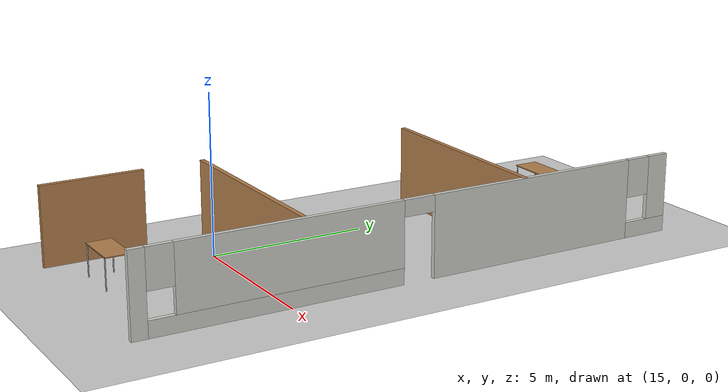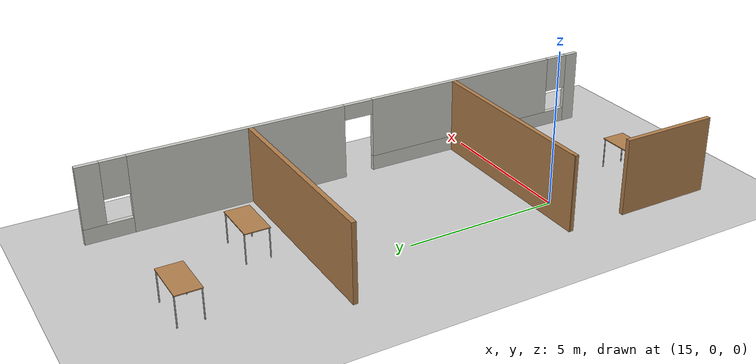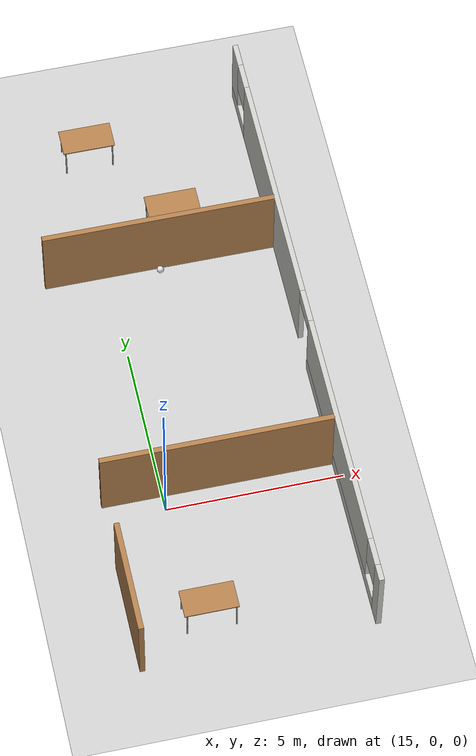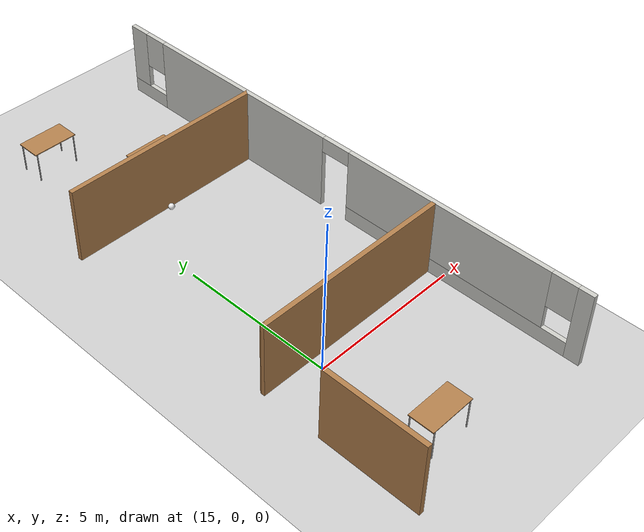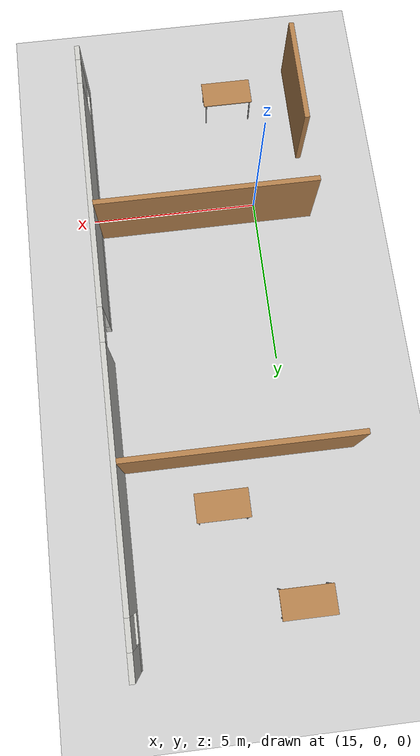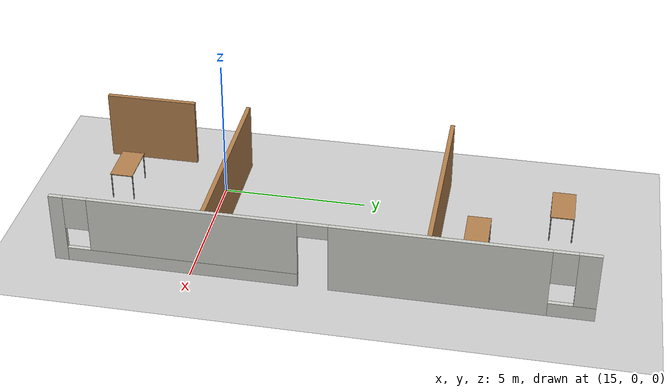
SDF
<sdf version="1.6">
 <world name="default">
  <model name="ground_plane">
   <static>1</static>
   <link name="link">
    <collision name="collision">
     <geometry><plane><normal>0 0 1</normal><size>100 100</size></plane></geometry>
     <surface>
      <contact><collide_bitmask>65535</collide_bitmask></contact>
      <friction><ode><mu>100</mu><mu2>50</mu2></ode></friction>
     </surface>
    </collision>
    <visual name="visual">
     <cast_shadows>0</cast_shadows>
     <geometry><plane><normal>0 0 1</normal><size>100 100</size></plane></geometry>
     <material>
      <script><uri>file://media/materials/scripts/gazebo.material</uri><name>Gazebo/Grey</name></script>
     </material>
    </visual>
   </link>
  </model>
  <model name="table_4">
   <static>1</static>
   <link name="link">
    <collision name="surface">
     <pose>0 0 1 0 -0 0</pose>
     <geometry><box><size>1.5 0.8 0.03</size></box></geometry>
     <surface><friction><ode><mu>0.6</mu><mu2>0.6</mu2></ode></friction></surface>
    </collision>
    <visual name="visual1">
     <pose>0 0 1 0 -0 0</pose>
     <geometry><box><size>1.5 0.8 0.03</size></box></geometry>
     <material>
      <script><uri>file://media/materials/scripts/gazebo.material</uri><name>Gazebo/Wood</name></script>
     </material>
    </visual>
    <collision name="front_left_leg">
     <pose>0.68 0.38 0.5 0 -0 0</pose>
     <geometry><cylinder><radius>0.02</radius><length>1</length></cylinder></geometry>
    </collision>
    <visual name="front_left_leg">
     <pose>0.68 0.38 0.5 0 -0 0</pose>
     <geometry><cylinder><radius>0.02</radius><length>1</length></cylinder></geometry>
     <material>
      <script><uri>file://media/materials/scripts/gazebo.material</uri><name>Gazebo/Grey</name></script>
     </material>
    </visual>
    <collision name="front_right_leg">
     <pose>0.68 -0.38 0.5 0 -0 0</pose>
     <geometry><cylinder><radius>0.02</radius><length>1</length></cylinder></geometry>
    </collision>
    <visual name="front_right_leg">
     <pose>0.68 -0.38 0.5 0 -0 0</pose>
     <geometry><cylinder><radius>0.02</radius><length>1</length></cylinder></geometry>
     <material>
      <script><uri>file://media/materials/scripts/gazebo.material</uri><name>Gazebo/Grey</name></script>
     </material>
    </visual>
    <collision name="back_right_leg">
     <pose>-0.68 -0.38 0.5 0 -0 0</pose>
     <geometry><cylinder><radius>0.02</radius><length>1</length></cylinder></geometry>
    </collision>
    <visual name="back_right_leg">
     <pose>-0.68 -0.38 0.5 0 -0 0</pose>
     <geometry><cylinder><radius>0.02</radius><length>1</length></cylinder></geometry>
     <material>
      <script><uri>file://media/materials/scripts/gazebo.material</uri><name>Gazebo/Grey</name></script>
     </material>
    </visual>
    <collision name="back_left_leg">
     <pose>-0.68 0.38 0.5 0 -0 0</pose>
     <geometry><cylinder><radius>0.02</radius><length>1</length></cylinder></geometry>
    </collision>
    <visual name="back_left_leg">
     <pose>-0.68 0.38 0.5 0 -0 0</pose>
     <geometry><cylinder><radius>0.02</radius><length>1</length></cylinder></geometry>
     <material>
      <script><uri>file://media/materials/scripts/gazebo.material</uri><name>Gazebo/Grey</name></script>
     </material>
    </visual>
   </link>
   <pose>17.1453 9.11903 0 0 -0 0</pose>
  </model>
  <model name="table_5">
   <static>1</static>
   <link name="link">
    <collision name="surface">
     <pose>0 0 1 0 -0 0</pose>
     <geometry><box><size>1.5 0.8 0.03</size></box></geometry>
     <surface><friction><ode><mu>0.6</mu><mu2>0.6</mu2></ode></friction></surface>
    </collision>
    <visual name="visual1">
     <pose>0 0 1 0 -0 0</pose>
     <geometry><box><size>1.5 0.8 0.03</size></box></geometry>
     <material>
      <script><uri>file://media/materials/scripts/gazebo.material</uri><name>Gazebo/Wood</name></script>
     </material>
    </visual>
    <collision name="front_left_leg">
     <pose>0.68 0.38 0.5 0 -0 0</pose>
     <geometry><cylinder><radius>0.02</radius><length>1</length></cylinder></geometry>
    </collision>
    <visual name="front_left_leg">
     <pose>0.68 0.38 0.5 0 -0 0</pose>
     <geometry><cylinder><radius>0.02</radius><length>1</length></cylinder></geometry>
     <material>
      <script><uri>file://media/materials/scripts/gazebo.material</uri><name>Gazebo/Grey</name></script>
     </material>
    </visual>
    <collision name="front_right_leg">
     <pose>0.68 -0.38 0.5 0 -0 0</pose>
     <geometry><cylinder><radius>0.02</radius><length>1</length></cylinder></geometry>
    </collision>
    <visual name="front_right_leg">
     <pose>0.68 -0.38 0.5 0 -0 0</pose>
     <geometry><cylinder><radius>0.02</radius><length>1</length></cylinder></geometry>
     <material>
      <script><uri>file://media/materials/scripts/gazebo.material</uri><name>Gazebo/Grey</name></script>
     </material>
    </visual>
    <collision name="back_right_leg">
     <pose>-0.68 -0.38 0.5 0 -0 0</pose>
     <geometry><cylinder><radius>0.02</radius><length>1</length></cylinder></geometry>
    </collision>
    <visual name="back_right_leg">
     <pose>-0.68 -0.38 0.5 0 -0 0</pose>
     <geometry><cylinder><radius>0.02</radius><length>1</length></cylinder></geometry>
     <material>
      <script><uri>file://media/materials/scripts/gazebo.material</uri><name>Gazebo/Grey</name></script>
     </material>
    </visual>
    <collision name="back_left_leg">
     <pose>-0.68 0.38 0.5 0 -0 0</pose>
     <geometry><cylinder><radius>0.02</radius><length>1</length></cylinder></geometry>
    </collision>
    <visual name="back_left_leg">
     <pose>-0.68 0.38 0.5 0 -0 0</pose>
     <geometry><cylinder><radius>0.02</radius><length>1</length></cylinder></geometry>
     <material>
      <script><uri>file://media/materials/scripts/gazebo.material</uri><name>Gazebo/Grey</name></script>
     </material>
    </visual>
   </link>
   <pose>15.2043 11.8509 0 0 -0 0</pose>
  </model>
  <model name="table_6">
   <static>1</static>
   <link name="link">
    <collision name="surface">
     <pose>0 0 1 0 -0 0</pose>
     <geometry><box><size>1.5 0.8 0.03</size></box></geometry>
     <surface><friction><ode><mu>0.6</mu><mu2>0.6</mu2></ode></friction></surface>
    </collision>
    <visual name="visual1">
     <pose>0 0 1 0 -0 0</pose>
     <geometry><box><size>1.5 0.8 0.03</size></box></geometry>
     <material>
      <script><uri>file://media/materials/scripts/gazebo.material</uri><name>Gazebo/Wood</name></script>
     </material>
    </visual>
    <collision name="front_left_leg">
     <pose>0.68 0.38 0.5 0 -0 0</pose>
     <geometry><cylinder><radius>0.02</radius><length>1</length></cylinder></geometry>
    </collision>
    <visual name="front_left_leg">
     <pose>0.68 0.38 0.5 0 -0 0</pose>
     <geometry><cylinder><radius>0.02</radius><length>1</length></cylinder></geometry>
     <material>
      <script><uri>file://media/materials/scripts/gazebo.material</uri><name>Gazebo/Grey</name></script>
     </material>
    </visual>
    <collision name="front_right_leg">
     <pose>0.68 -0.38 0.5 0 -0 0</pose>
     <geometry><cylinder><radius>0.02</radius><length>1</length></cylinder></geometry>
    </collision>
    <visual name="front_right_leg">
     <pose>0.68 -0.38 0.5 0 -0 0</pose>
     <geometry><cylinder><radius>0.02</radius><length>1</length></cylinder></geometry>
     <material>
      <script><uri>file://media/materials/scripts/gazebo.material</uri><name>Gazebo/Grey</name></script>
     </material>
    </visual>
    <collision name="back_right_leg">
     <pose>-0.68 -0.38 0.5 0 -0 0</pose>
     <geometry><cylinder><radius>0.02</radius><length>1</length></cylinder></geometry>
    </collision>
    <visual name="back_right_leg">
     <pose>-0.68 -0.38 0.5 0 -0 0</pose>
     <geometry><cylinder><radius>0.02</radius><length>1</length></cylinder></geometry>
     <material>
      <script><uri>file://media/materials/scripts/gazebo.material</uri><name>Gazebo/Grey</name></script>
     </material>
    </visual>
    <collision name="back_left_leg">
     <pose>-0.68 0.38 0.5 0 -0 0</pose>
     <geometry><cylinder><radius>0.02</radius><length>1</length></cylinder></geometry>
    </collision>
    <visual name="back_left_leg">
     <pose>-0.68 0.38 0.5 0 -0 0</pose>
     <geometry><cylinder><radius>0.02</radius><length>1</length></cylinder></geometry>
     <material>
      <script><uri>file://media/materials/scripts/gazebo.material</uri><name>Gazebo/Grey</name></script>
     </material>
    </visual>
   </link>
   <pose>15.4576 -3.44775 0 0 -0 0</pose>
  </model>
  <model name="mybuilding">
   <link name="Wall_41">
    <pose>19.8298 0.007562 0 0 -0 1.5708</pose>
    <visual name="Wall_41_Visual_9">
     <pose>-0.150712 0 2.25 0 -0 0</pose>
     <geometry><box><size>1 0.15 0.5</size></box></geometry>
     <material>
      <script><uri>file://media/materials/scripts/gazebo.material</uri><name>Gazebo/CeilingTiled</name></script>
      <ambient>1 0.972549 0.847059 1</ambient>
      <shader type="pixel"/>
      <diffuse>1 1 1 1</diffuse>
      <specular>0 0 0 1</specular>
      <emissive>0 0 0 1</emissive>
     </material>
     <meta><layer>0</layer></meta>
    </visual>
    <visual name="Wall_41_Visual_0">
     <pose>-8.63665 0 1.25 0 -0 0</pose>
     <geometry><box><size>0.476697 0.15 2.5</size></box></geometry>
     <material>
      <script><uri>file://media/materials/scripts/gazebo.material</uri><name>Gazebo/CeilingTiled</name></script>
      <ambient>1 0.972549 0.847059 1</ambient>
      <shader type="pixel"/>
      <diffuse>1 1 1 1</diffuse>
      <specular>0 0 0 1</specular>
      <emissive>0 0 0 1</emissive>
     </material>
     <meta><layer>0</layer></meta>
    </visual>
    <visual name="Wall_41_Visual_1">
     <pose>3.85638 0 1.25 0 -0 0</pose>
     <geometry><box><size>7.01419 0.15 2.5</size></box></geometry>
     <material>
      <script><uri>file://media/materials/scripts/gazebo.material</uri><name>Gazebo/CeilingTiled</name></script>
      <ambient>1 0.972549 0.847059 1</ambient>
      <shader type="pixel"/>
      <diffuse>1 1 1 1</diffuse>
      <specular>0 0 0 1</specular>
      <emissive>0 0 0 1</emissive>
     </material>
     <meta><layer>0</layer></meta>
    </visual>
    <visual name="Wall_41_Visual_2">
     <pose>-4.52451 0 0.25 0 -0 0</pose>
     <geometry><box><size>7.74759 0.15 0.5</size></box></geometry>
     <material>
      <script><uri>file://media/materials/scripts/gazebo.material</uri><name>Gazebo/CeilingTiled</name></script>
      <ambient>1 0.972549 0.847059 1</ambient>
      <shader type="pixel"/>
      <diffuse>1 1 1 1</diffuse>
      <specular>0 0 0 1</specular>
      <emissive>0 0 0 1</emissive>
     </material>
     <meta><layer>0</layer></meta>
    </visual>
    <visual name="Wall_41_Visual_3">
     <pose>8.11924 0 0.25 0 -0 0</pose>
     <geometry><box><size>1.51152 0.15 0.5</size></box></geometry>
     <material>
      <script><uri>file://media/materials/scripts/gazebo.material</uri><name>Gazebo/CeilingTiled</name></script>
      <ambient>1 0.972549 0.847059 1</ambient>
      <shader type="pixel"/>
      <diffuse>1 1 1 1</diffuse>
      <specular>0 0 0 1</specular>
      <emissive>0 0 0 1</emissive>
     </material>
     <meta><layer>0</layer></meta>
    </visual>
    <visual name="Wall_41_Visual_4">
     <pose>-4.12451 0 1.5 0 -0 0</pose>
     <geometry><box><size>6.94759 0.15 2</size></box></geometry>
     <material>
      <script><uri>file://media/materials/scripts/gazebo.material</uri><name>Gazebo/CeilingTiled</name></script>
      <ambient>1 0.972549 0.847059 1</ambient>
      <shader type="pixel"/>
      <diffuse>1 1 1 1</diffuse>
      <specular>0 0 0 1</specular>
      <emissive>0 0 0 1</emissive>
     </material>
     <meta><layer>0</layer></meta>
    </visual>
    <visual name="Wall_41_Visual_5">
     <pose>-4.12451 0 1.5 0 -0 0</pose>
     <geometry><box><size>6.94759 0.15 2</size></box></geometry>
     <material>
      <script><uri>file://media/materials/scripts/gazebo.material</uri><name>Gazebo/CeilingTiled</name></script>
      <ambient>1 0.972549 0.847059 1</ambient>
      <shader type="pixel"/>
      <diffuse>1 1 1 1</diffuse>
      <specular>0 0 0 1</specular>
      <emissive>0 0 0 1</emissive>
     </material>
     <meta><layer>0</layer></meta>
    </visual>
    <visual name="Wall_41_Visual_6">
     <pose>8.51924 0 1.5 0 -0 0</pose>
     <geometry><box><size>0.711521 0.15 2</size></box></geometry>
     <material>
      <script><uri>file://media/materials/scripts/gazebo.material</uri><name>Gazebo/CeilingTiled</name></script>
      <ambient>1 0.972549 0.847059 1</ambient>
      <shader type="pixel"/>
      <diffuse>1 1 1 1</diffuse>
      <specular>0 0 0 1</specular>
      <emissive>0 0 0 1</emissive>
     </material>
     <meta><layer>0</layer></meta>
    </visual>
    <visual name="Wall_41_Visual_7">
     <pose>-7.9983 0 1.9 0 -0 0</pose>
     <geometry><box><size>0.8 0.15 1.2</size></box></geometry>
     <material>
      <script><uri>file://media/materials/scripts/gazebo.material</uri><name>Gazebo/CeilingTiled</name></script>
      <ambient>1 0.972549 0.847059 1</ambient>
      <shader type="pixel"/>
      <diffuse>1 1 1 1</diffuse>
      <specular>0 0 0 1</specular>
      <emissive>0 0 0 1</emissive>
     </material>
     <meta><layer>0</layer></meta>
    </visual>
    <visual name="Wall_41_Visual_8">
     <pose>7.76348 0 1.9 0 -0 0</pose>
     <geometry><box><size>0.8 0.15 1.2</size></box></geometry>
     <material>
      <script><uri>file://media/materials/scripts/gazebo.material</uri><name>Gazebo/CeilingTiled</name></script>
      <ambient>1 0.972549 0.847059 1</ambient>
      <shader type="pixel"/>
      <diffuse>1 1 1 1</diffuse>
      <specular>0 0 0 1</specular>
      <emissive>0 0 0 1</emissive>
     </material>
     <meta><layer>0</layer></meta>
    </visual>
    <visual name="Wall_41_Visual_10">
     <pose>-0.150712 0 2.25 0 -0 0</pose>
     <geometry><box><size>1 0.15 0.5</size></box></geometry>
     <material>
      <script><uri>file://media/materials/scripts/gazebo.material</uri><name>Gazebo/CeilingTiled</name></script>
      <ambient>1 0.972549 0.847059 1</ambient>
      <shader type="pixel"/>
      <diffuse>1 1 1 1</diffuse>
      <specular>0 0 0 1</specular>
      <emissive>0 0 0 1</emissive>
     </material>
     <meta><layer>0</layer></meta>
    </visual>
    <collision name="Wall_41_Collision_0">
     <pose>-8.63665 0 1.25 0 -0 0</pose>
     <geometry><box><size>0.476697 0.15 2.5</size></box></geometry>
     <surface>
      <friction>
       <ode><mu>1</mu><mu2>1</mu2><fdir1>0 0 0</fdir1><slip1>0</slip1><slip2>0</slip2></ode>
       <torsional>
        <coefficient>1</coefficient>
        <patch_radius>0</patch_radius>
        <surface_radius>0</surface_radius>
        <use_patch_radius>1</use_patch_radius>
        <ode><slip>0</slip></ode>
       </torsional>
      </friction>
      <bounce><restitution_coefficient>0</restitution_coefficient><threshold>1e+06</threshold></bounce>
      <contact>
       <collide_without_contact>0</collide_without_contact>
       <collide_without_contact_bitmask>1</collide_without_contact_bitmask>
       <collide_bitmask>1</collide_bitmask>
       <ode>
        <soft_cfm>0</soft_cfm>
        <soft_erp>0.2</soft_erp>
        <kp>1e+13</kp>
        <kd>1</kd>
        <max_vel>0.01</max_vel>
        <min_depth>0</min_depth>
       </ode>
       <bullet>
        <split_impulse>1</split_impulse>
        <split_impulse_penetration_threshold>-0.01</split_impulse_penetration_threshold>
        <soft_cfm>0</soft_cfm>
        <soft_erp>0.2</soft_erp>
        <kp>1e+13</kp>
        <kd>1</kd>
       </bullet>
      </contact>
     </surface>
    </collision>
    <collision name="Wall_41_Collision_1">
     <pose>3.85638 0 1.25 0 -0 0</pose>
     <geometry><box><size>7.01419 0.15 2.5</size></box></geometry>
     <surface>
      <friction>
       <ode><mu>1</mu><mu2>1</mu2><fdir1>0 0 0</fdir1><slip1>0</slip1><slip2>0</slip2></ode>
       <torsional>
        <coefficient>1</coefficient>
        <patch_radius>0</patch_radius>
        <surface_radius>0</surface_radius>
        <use_patch_radius>1</use_patch_radius>
        <ode><slip>0</slip></ode>
       </torsional>
      </friction>
      <bounce><restitution_coefficient>0</restitution_coefficient><threshold>1e+06</threshold></bounce>
      <contact>
       <collide_without_contact>0</collide_without_contact>
       <collide_without_contact_bitmask>1</collide_without_contact_bitmask>
       <collide_bitmask>1</collide_bitmask>
       <ode>
        <soft_cfm>0</soft_cfm>
        <soft_erp>0.2</soft_erp>
        <kp>1e+13</kp>
        <kd>1</kd>
        <max_vel>0.01</max_vel>
        <min_depth>0</min_depth>
       </ode>
       <bullet>
        <split_impulse>1</split_impulse>
        <split_impulse_penetration_threshold>-0.01</split_impulse_penetration_threshold>
        <soft_cfm>0</soft_cfm>
        <soft_erp>0.2</soft_erp>
        <kp>1e+13</kp>
        <kd>1</kd>
       </bullet>
      </contact>
     </surface>
    </collision>
    <collision name="Wall_41_Collision_2">
     <pose>-4.52451 0 0.25 0 -0 0</pose>
     <geometry><box><size>7.74759 0.15 0.5</size></box></geometry>
     <surface>
      <friction>
       <ode><mu>1</mu><mu2>1</mu2><fdir1>0 0 0</fdir1><slip1>0</slip1><slip2>0</slip2></ode>
       <torsional>
        <coefficient>1</coefficient>
        <patch_radius>0</patch_radius>
        <surface_radius>0</surface_radius>
        <use_patch_radius>1</use_patch_radius>
        <ode><slip>0</slip></ode>
       </torsional>
      </friction>
      <bounce><restitution_coefficient>0</restitution_coefficient><threshold>1e+06</threshold></bounce>
      <contact>
       <collide_without_contact>0</collide_without_contact>
       <collide_without_contact_bitmask>1</collide_without_contact_bitmask>
       <collide_bitmask>1</collide_bitmask>
       <ode>
        <soft_cfm>0</soft_cfm>
        <soft_erp>0.2</soft_erp>
        <kp>1e+13</kp>
        <kd>1</kd>
        <max_vel>0.01</max_vel>
        <min_depth>0</min_depth>
       </ode>
       <bullet>
        <split_impulse>1</split_impulse>
        <split_impulse_penetration_threshold>-0.01</split_impulse_penetration_threshold>
        <soft_cfm>0</soft_cfm>
        <soft_erp>0.2</soft_erp>
        <kp>1e+13</kp>
        <kd>1</kd>
       </bullet>
      </contact>
     </surface>
    </collision>
    <collision name="Wall_41_Collision_3">
     <pose>8.11924 0 0.25 0 -0 0</pose>
     <geometry><box><size>1.51152 0.15 0.5</size></box></geometry>
     <surface>
      <friction>
       <ode><mu>1</mu><mu2>1</mu2><fdir1>0 0 0</fdir1><slip1>0</slip1><slip2>0</slip2></ode>
       <torsional>
        <coefficient>1</coefficient>
        <patch_radius>0</patch_radius>
        <surface_radius>0</surface_radius>
        <use_patch_radius>1</use_patch_radius>
        <ode><slip>0</slip></ode>
       </torsional>
      </friction>
      <bounce><restitution_coefficient>0</restitution_coefficient><threshold>1e+06</threshold></bounce>
      <contact>
       <collide_without_contact>0</collide_without_contact>
       <collide_without_contact_bitmask>1</collide_without_contact_bitmask>
       <collide_bitmask>1</collide_bitmask>
       <ode>
        <soft_cfm>0</soft_cfm>
        <soft_erp>0.2</soft_erp>
        <kp>1e+13</kp>
        <kd>1</kd>
        <max_vel>0.01</max_vel>
        <min_depth>0</min_depth>
       </ode>
       <bullet>
        <split_impulse>1</split_impulse>
        <split_impulse_penetration_threshold>-0.01</split_impulse_penetration_threshold>
        <soft_cfm>0</soft_cfm>
        <soft_erp>0.2</soft_erp>
        <kp>1e+13</kp>
        <kd>1</kd>
       </bullet>
      </contact>
     </surface>
    </collision>
    <collision name="Wall_41_Collision_4">
     <pose>-4.12451 0 1.5 0 -0 0</pose>
     <geometry><box><size>6.94759 0.15 2</size></box></geometry>
     <surface>
      <friction>
       <ode><mu>1</mu><mu2>1</mu2><fdir1>0 0 0</fdir1><slip1>0</slip1><slip2>0</slip2></ode>
       <torsional>
        <coefficient>1</coefficient>
        <patch_radius>0</patch_radius>
        <surface_radius>0</surface_radius>
        <use_patch_radius>1</use_patch_radius>
        <ode><slip>0</slip></ode>
       </torsional>
      </friction>
      <bounce><restitution_coefficient>0</restitution_coefficient><threshold>1e+06</threshold></bounce>
      <contact>
       <collide_without_contact>0</collide_without_contact>
       <collide_without_contact_bitmask>1</collide_without_contact_bitmask>
       <collide_bitmask>1</collide_bitmask>
       <ode>
        <soft_cfm>0</soft_cfm>
        <soft_erp>0.2</soft_erp>
        <kp>1e+13</kp>
        <kd>1</kd>
        <max_vel>0.01</max_vel>
        <min_depth>0</min_depth>
       </ode>
       <bullet>
        <split_impulse>1</split_impulse>
        <split_impulse_penetration_threshold>-0.01</split_impulse_penetration_threshold>
        <soft_cfm>0</soft_cfm>
        <soft_erp>0.2</soft_erp>
        <kp>1e+13</kp>
        <kd>1</kd>
       </bullet>
      </contact>
     </surface>
    </collision>
    <collision name="Wall_41_Collision_5">
     <pose>-4.12451 0 1.5 0 -0 0</pose>
     <geometry><box><size>6.94759 0.15 2</size></box></geometry>
     <surface>
      <friction>
       <ode><mu>1</mu><mu2>1</mu2><fdir1>0 0 0</fdir1><slip1>0</slip1><slip2>0</slip2></ode>
       <torsional>
        <coefficient>1</coefficient>
        <patch_radius>0</patch_radius>
        <surface_radius>0</surface_radius>
        <use_patch_radius>1</use_patch_radius>
        <ode><slip>0</slip></ode>
       </torsional>
      </friction>
      <bounce><restitution_coefficient>0</restitution_coefficient><threshold>1e+06</threshold></bounce>
      <contact>
       <collide_without_contact>0</collide_without_contact>
       <collide_without_contact_bitmask>1</collide_without_contact_bitmask>
       <collide_bitmask>1</collide_bitmask>
       <ode>
        <soft_cfm>0</soft_cfm>
        <soft_erp>0.2</soft_erp>
        <kp>1e+13</kp>
        <kd>1</kd>
        <max_vel>0.01</max_vel>
        <min_depth>0</min_depth>
       </ode>
       <bullet>
        <split_impulse>1</split_impulse>
        <split_impulse_penetration_threshold>-0.01</split_impulse_penetration_threshold>
        <soft_cfm>0</soft_cfm>
        <soft_erp>0.2</soft_erp>
        <kp>1e+13</kp>
        <kd>1</kd>
       </bullet>
      </contact>
     </surface>
    </collision>
    <collision name="Wall_41_Collision_6">
     <pose>8.51924 0 1.5 0 -0 0</pose>
     <geometry><box><size>0.711521 0.15 2</size></box></geometry>
     <surface>
      <friction>
       <ode><mu>1</mu><mu2>1</mu2><fdir1>0 0 0</fdir1><slip1>0</slip1><slip2>0</slip2></ode>
       <torsional>
        <coefficient>1</coefficient>
        <patch_radius>0</patch_radius>
        <surface_radius>0</surface_radius>
        <use_patch_radius>1</use_patch_radius>
        <ode><slip>0</slip></ode>
       </torsional>
      </friction>
      <bounce><restitution_coefficient>0</restitution_coefficient><threshold>1e+06</threshold></bounce>
      <contact>
       <collide_without_contact>0</collide_without_contact>
       <collide_without_contact_bitmask>1</collide_without_contact_bitmask>
       <collide_bitmask>1</collide_bitmask>
       <ode>
        <soft_cfm>0</soft_cfm>
        <soft_erp>0.2</soft_erp>
        <kp>1e+13</kp>
        <kd>1</kd>
        <max_vel>0.01</max_vel>
        <min_depth>0</min_depth>
       </ode>
       <bullet>
        <split_impulse>1</split_impulse>
        <split_impulse_penetration_threshold>-0.01</split_impulse_penetration_threshold>
        <soft_cfm>0</soft_cfm>
        <soft_erp>0.2</soft_erp>
        <kp>1e+13</kp>
        <kd>1</kd>
       </bullet>
      </contact>
     </surface>
    </collision>
    <collision name="Wall_41_Collision_7">
     <pose>-7.9983 0 1.9 0 -0 0</pose>
     <geometry><box><size>0.8 0.15 1.2</size></box></geometry>
     <surface>
      <friction>
       <ode><mu>1</mu><mu2>1</mu2><fdir1>0 0 0</fdir1><slip1>0</slip1><slip2>0</slip2></ode>
       <torsional>
        <coefficient>1</coefficient>
        <patch_radius>0</patch_radius>
        <surface_radius>0</surface_radius>
        <use_patch_radius>1</use_patch_radius>
        <ode><slip>0</slip></ode>
       </torsional>
      </friction>
      <bounce><restitution_coefficient>0</restitution_coefficient><threshold>1e+06</threshold></bounce>
      <contact>
       <collide_without_contact>0</collide_without_contact>
       <collide_without_contact_bitmask>1</collide_without_contact_bitmask>
       <collide_bitmask>1</collide_bitmask>
       <ode>
        <soft_cfm>0</soft_cfm>
        <soft_erp>0.2</soft_erp>
        <kp>1e+13</kp>
        <kd>1</kd>
        <max_vel>0.01</max_vel>
        <min_depth>0</min_depth>
       </ode>
       <bullet>
        <split_impulse>1</split_impulse>
        <split_impulse_penetration_threshold>-0.01</split_impulse_penetration_threshold>
        <soft_cfm>0</soft_cfm>
        <soft_erp>0.2</soft_erp>
        <kp>1e+13</kp>
        <kd>1</kd>
       </bullet>
      </contact>
     </surface>
    </collision>
    <collision name="Wall_41_Collision_8">
     <pose>7.76348 0 1.9 0 -0 0</pose>
     <geometry><box><size>0.8 0.15 1.2</size></box></geometry>
     <surface>
      <friction>
       <ode><mu>1</mu><mu2>1</mu2><fdir1>0 0 0</fdir1><slip1>0</slip1><slip2>0</slip2></ode>
       <torsional>
        <coefficient>1</coefficient>
        <patch_radius>0</patch_radius>
        <surface_radius>0</surface_radius>
        <use_patch_radius>1</use_patch_radius>
        <ode><slip>0</slip></ode>
       </torsional>
      </friction>
      <bounce><restitution_coefficient>0</restitution_coefficient><threshold>1e+06</threshold></bounce>
      <contact>
       <collide_without_contact>0</collide_without_contact>
       <collide_without_contact_bitmask>1</collide_without_contact_bitmask>
       <collide_bitmask>1</collide_bitmask>
       <ode>
        <soft_cfm>0</soft_cfm>
        <soft_erp>0.2</soft_erp>
        <kp>1e+13</kp>
        <kd>1</kd>
        <max_vel>0.01</max_vel>
        <min_depth>0</min_depth>
       </ode>
       <bullet>
        <split_impulse>1</split_impulse>
        <split_impulse_penetration_threshold>-0.01</split_impulse_penetration_threshold>
        <soft_cfm>0</soft_cfm>
        <soft_erp>0.2</soft_erp>
        <kp>1e+13</kp>
        <kd>1</kd>
       </bullet>
      </contact>
     </surface>
    </collision>
    <collision name="Wall_41_Collision_9">
     <pose>-0.150712 0 2.25 0 -0 0</pose>
     <geometry><box><size>1 0.15 0.5</size></box></geometry>
     <surface>
      <friction>
       <ode><mu>1</mu><mu2>1</mu2><fdir1>0 0 0</fdir1><slip1>0</slip1><slip2>0</slip2></ode>
       <torsional>
        <coefficient>1</coefficient>
        <patch_radius>0</patch_radius>
        <surface_radius>0</surface_radius>
        <use_patch_radius>1</use_patch_radius>
        <ode><slip>0</slip></ode>
       </torsional>
      </friction>
      <bounce><restitution_coefficient>0</restitution_coefficient><threshold>1e+06</threshold></bounce>
      <contact>
       <collide_without_contact>0</collide_without_contact>
       <collide_without_contact_bitmask>1</collide_without_contact_bitmask>
       <collide_bitmask>1</collide_bitmask>
       <ode>
        <soft_cfm>0</soft_cfm>
        <soft_erp>0.2</soft_erp>
        <kp>1e+13</kp>
        <kd>1</kd>
        <max_vel>0.01</max_vel>
        <min_depth>0</min_depth>
       </ode>
       <bullet>
        <split_impulse>1</split_impulse>
        <split_impulse_penetration_threshold>-0.01</split_impulse_penetration_threshold>
        <soft_cfm>0</soft_cfm>
        <soft_erp>0.2</soft_erp>
        <kp>1e+13</kp>
        <kd>1</kd>
       </bullet>
      </contact>
     </surface>
    </collision>
    <collision name="Wall_41_Collision_10">
     <pose>-0.150712 0 2.25 0 -0 0</pose>
     <geometry><box><size>1 0.15 0.5</size></box></geometry>
     <surface>
      <friction>
       <ode><mu>1</mu><mu2>1</mu2><fdir1>0 0 0</fdir1><slip1>0</slip1><slip2>0</slip2></ode>
       <torsional>
        <coefficient>1</coefficient>
        <patch_radius>0</patch_radius>
        <surface_radius>0</surface_radius>
        <use_patch_radius>1</use_patch_radius>
        <ode><slip>0</slip></ode>
       </torsional>
      </friction>
      <bounce><restitution_coefficient>0</restitution_coefficient><threshold>1e+06</threshold></bounce>
      <contact>
       <collide_without_contact>0</collide_without_contact>
       <collide_without_contact_bitmask>1</collide_without_contact_bitmask>
       <collide_bitmask>1</collide_bitmask>
       <ode>
        <soft_cfm>0</soft_cfm>
        <soft_erp>0.2</soft_erp>
        <kp>1e+13</kp>
        <kd>1</kd>
        <max_vel>0.01</max_vel>
        <min_depth>0</min_depth>
       </ode>
       <bullet>
        <split_impulse>1</split_impulse>
        <split_impulse_penetration_threshold>-0.01</split_impulse_penetration_threshold>
        <soft_cfm>0</soft_cfm>
        <soft_erp>0.2</soft_erp>
        <kp>1e+13</kp>
        <kd>1</kd>
       </bullet>
      </contact>
     </surface>
    </collision>
   </link>
   <link name="Wall_53">
    <pose>13.345 -6.28863 0 0 -0 1.5708</pose>
    <visual name="Wall_53_Visual_0">
     <pose>-1.01562 0 1.25 0 -0 0</pose>
     <geometry><box><size>3.21877 0.15 2.5</size></box></geometry>
     <material>
      <script><uri>file://media/materials/scripts/gazebo.material</uri><name>Gazebo/Wood</name></script>
      <ambient>1 1 1 1</ambient>
      <shader type="pixel"/>
      <diffuse>1 1 1 1</diffuse>
      <specular>0.2 0.2 0.2 1</specular>
      <emissive>0 0 0 1</emissive>
     </material>
     <meta><layer>0</layer></meta>
    </visual>
    <visual name="Wall_53_Visual_1">
     <pose>2.60938 0 1.25 0 -0 0</pose>
     <geometry><box><size>0.031234 0.15 2.5</size></box></geometry>
     <material>
      <script><uri>file://media/materials/scripts/gazebo.material</uri><name>Gazebo/Wood</name></script>
      <ambient>1 1 1 1</ambient>
      <shader type="pixel"/>
      <diffuse>1 1 1 1</diffuse>
      <specular>0.2 0.2 0.2 1</specular>
      <emissive>0 0 0 1</emissive>
     </material>
     <meta><layer>0</layer></meta>
    </visual>
    <collision name="Wall_53_Collision_0">
     <pose>-1.01562 0 1.25 0 -0 0</pose>
     <geometry><box><size>3.21877 0.15 2.5</size></box></geometry>
     <surface>
      <friction>
       <ode><mu>1</mu><mu2>1</mu2><fdir1>0 0 0</fdir1><slip1>0</slip1><slip2>0</slip2></ode>
       <torsional>
        <coefficient>1</coefficient>
        <patch_radius>0</patch_radius>
        <surface_radius>0</surface_radius>
        <use_patch_radius>1</use_patch_radius>
        <ode><slip>0</slip></ode>
       </torsional>
      </friction>
      <bounce><restitution_coefficient>0</restitution_coefficient><threshold>1e+06</threshold></bounce>
      <contact>
       <collide_without_contact>0</collide_without_contact>
       <collide_without_contact_bitmask>1</collide_without_contact_bitmask>
       <collide_bitmask>1</collide_bitmask>
       <ode>
        <soft_cfm>0</soft_cfm>
        <soft_erp>0.2</soft_erp>
        <kp>1e+13</kp>
        <kd>1</kd>
        <max_vel>0.01</max_vel>
        <min_depth>0</min_depth>
       </ode>
       <bullet>
        <split_impulse>1</split_impulse>
        <split_impulse_penetration_threshold>-0.01</split_impulse_penetration_threshold>
        <soft_cfm>0</soft_cfm>
        <soft_erp>0.2</soft_erp>
        <kp>1e+13</kp>
        <kd>1</kd>
       </bullet>
      </contact>
     </surface>
    </collision>
    <collision name="Wall_53_Collision_1">
     <pose>2.60938 0 1.25 0 -0 0</pose>
     <geometry><box><size>0.031234 0.15 2.5</size></box></geometry>
     <surface>
      <friction>
       <ode><mu>1</mu><mu2>1</mu2><fdir1>0 0 0</fdir1><slip1>0</slip1><slip2>0</slip2></ode>
       <torsional>
        <coefficient>1</coefficient>
        <patch_radius>0</patch_radius>
        <surface_radius>0</surface_radius>
        <use_patch_radius>1</use_patch_radius>
        <ode><slip>0</slip></ode>
       </torsional>
      </friction>
      <bounce><restitution_coefficient>0</restitution_coefficient><threshold>1e+06</threshold></bounce>
      <contact>
       <collide_without_contact>0</collide_without_contact>
       <collide_without_contact_bitmask>1</collide_without_contact_bitmask>
       <collide_bitmask>1</collide_bitmask>
       <ode>
        <soft_cfm>0</soft_cfm>
        <soft_erp>0.2</soft_erp>
        <kp>1e+13</kp>
        <kd>1</kd>
        <max_vel>0.01</max_vel>
        <min_depth>0</min_depth>
       </ode>
       <bullet>
        <split_impulse>1</split_impulse>
        <split_impulse_penetration_threshold>-0.01</split_impulse_penetration_threshold>
        <soft_cfm>0</soft_cfm>
        <soft_erp>0.2</soft_erp>
        <kp>1e+13</kp>
        <kd>1</kd>
       </bullet>
      </contact>
     </surface>
    </collision>
   </link>
   <link name="Wall_54">
    <pose>16.52 -3.73863 0 0 -0 0</pose>
    <visual name="Wall_54_Visual">
     <pose>0 0 1.25 0 -0 0</pose>
     <geometry><box><size>6.5 0.15 2.5</size></box></geometry>
     <material>
      <script><uri>file://media/materials/scripts/gazebo.material</uri><name>Gazebo/Wood</name></script>
      <ambient>1 1 1 1</ambient>
      <shader type="pixel"/>
      <diffuse>1 1 1 1</diffuse>
      <specular>0.2 0.2 0.2 1</specular>
      <emissive>0 0 0 1</emissive>
     </material>
     <meta><layer>0</layer></meta>
    </visual>
    <collision name="Wall_54_Collision">
     <pose>0 0 1.25 0 -0 0</pose>
     <geometry><box><size>6.5 0.15 2.5</size></box></geometry>
     <surface>
      <friction>
       <ode><mu>1</mu><mu2>1</mu2><fdir1>0 0 0</fdir1><slip1>0</slip1><slip2>0</slip2></ode>
       <torsional>
        <coefficient>1</coefficient>
        <patch_radius>0</patch_radius>
        <surface_radius>0</surface_radius>
        <use_patch_radius>1</use_patch_radius>
        <ode><slip>0</slip></ode>
       </torsional>
      </friction>
      <bounce><restitution_coefficient>0</restitution_coefficient><threshold>1e+06</threshold></bounce>
      <contact>
       <collide_without_contact>0</collide_without_contact>
       <collide_without_contact_bitmask>1</collide_without_contact_bitmask>
       <collide_bitmask>1</collide_bitmask>
       <ode>
        <soft_cfm>0</soft_cfm>
        <soft_erp>0.2</soft_erp>
        <kp>1e+13</kp>
        <kd>1</kd>
        <max_vel>0.01</max_vel>
        <min_depth>0</min_depth>
       </ode>
       <bullet>
        <split_impulse>1</split_impulse>
        <split_impulse_penetration_threshold>-0.01</split_impulse_penetration_threshold>
        <soft_cfm>0</soft_cfm>
        <soft_erp>0.2</soft_erp>
        <kp>1e+13</kp>
        <kd>1</kd>
       </bullet>
      </contact>
     </surface>
    </collision>
   </link>
   <link name="Wall_57">
    <pose>16.5051 3.55143 0 0 -0 0</pose>
    <visual name="Wall_57_Visual">
     <pose>0 0 1.25 0 -0 0</pose>
     <geometry><box><size>6.75 0.15 2.5</size></box></geometry>
     <material>
      <script><uri>file://media/materials/scripts/gazebo.material</uri><name>Gazebo/Wood</name></script>
      <ambient>1 1 1 1</ambient>
      <shader type="pixel"/>
      <diffuse>1 1 1 1</diffuse>
      <specular>0.2 0.2 0.2 1</specular>
      <emissive>0 0 0 1</emissive>
     </material>
     <meta><layer>0</layer></meta>
    </visual>
    <collision name="Wall_57_Collision">
     <pose>0 0 1.25 0 -0 0</pose>
     <geometry><box><size>6.75 0.15 2.5</size></box></geometry>
     <surface>
      <friction>
       <ode><mu>1</mu><mu2>1</mu2><fdir1>0 0 0</fdir1><slip1>0</slip1><slip2>0</slip2></ode>
       <torsional>
        <coefficient>1</coefficient>
        <patch_radius>0</patch_radius>
        <surface_radius>0</surface_radius>
        <use_patch_radius>1</use_patch_radius>
        <ode><slip>0</slip></ode>
       </torsional>
      </friction>
      <bounce><restitution_coefficient>0</restitution_coefficient><threshold>1e+06</threshold></bounce>
      <contact>
       <collide_without_contact>0</collide_without_contact>
       <collide_without_contact_bitmask>1</collide_without_contact_bitmask>
       <collide_bitmask>1</collide_bitmask>
       <ode>
        <soft_cfm>0</soft_cfm>
        <soft_erp>0.2</soft_erp>
        <kp>1e+13</kp>
        <kd>1</kd>
        <max_vel>0.01</max_vel>
        <min_depth>0</min_depth>
       </ode>
       <bullet>
        <split_impulse>1</split_impulse>
        <split_impulse_penetration_threshold>-0.01</split_impulse_penetration_threshold>
        <soft_cfm>0</soft_cfm>
        <soft_erp>0.2</soft_erp>
        <kp>1e+13</kp>
        <kd>1</kd>
       </bullet>
      </contact>
     </surface>
    </collision>
   </link>
   <static>1</static>
   <pose>0.027091 4.22979 0 0 -0 0</pose>
  </model>
  <model name="my_ball">
   <link name="link_0">
    <pose>0.407942 -0.252297 0 0 -0 0</pose>
    <inertial>
     <mass>1</mass>
     <inertia><ixx>0.1</ixx><ixy>0</ixy><ixz>0</ixz><iyy>0.1</iyy><iyz>0</iyz><izz>0.1</izz></inertia>
    </inertial>
    <visual name="visual">
     <geometry><sphere><radius>0.1</radius></sphere></geometry>
     <material>
      <lighting>1</lighting>
      <script><uri>file://media/materials/scripts/gazebo.material</uri><name>Gazebo/White</name></script>
      <shader type="pixel"><normal_map>__default__</normal_map></shader>
      <ambient>1 1 1 1</ambient>
      <diffuse>1 1 1 1</diffuse>
      <specular>1 1 1 1</specular>
      <emissive>1 1 1 1</emissive>
     </material>
    </visual>
    <collision name="collision">
     <geometry><sphere><radius>0.1</radius></sphere></geometry>
     <surface>
      <friction>
       <ode><mu>1</mu><mu2>1</mu2><fdir1>0 0 0</fdir1><slip1>0</slip1><slip2>0</slip2></ode>
       <torsional>
        <coefficient>1</coefficient>
        <patch_radius>0</patch_radius>
        <surface_radius>0</surface_radius>
        <use_patch_radius>1</use_patch_radius>
        <ode><slip>0</slip></ode>
       </torsional>
      </friction>
      <bounce><restitution_coefficient>0</restitution_coefficient><threshold>1e+06</threshold></bounce>
      <contact>
       <collide_without_contact>0</collide_without_contact>
       <collide_without_contact_bitmask>1</collide_without_contact_bitmask>
       <collide_bitmask>1</collide_bitmask>
       <ode>
        <soft_cfm>0</soft_cfm>
        <soft_erp>0.2</soft_erp>
        <kp>1e+13</kp>
        <kd>1</kd>
        <max_vel>0.01</max_vel>
        <min_depth>0</min_depth>
       </ode>
       <bullet>
        <split_impulse>1</split_impulse>
        <split_impulse_penetration_threshold>-0.01</split_impulse_penetration_threshold>
        <soft_cfm>0</soft_cfm>
        <soft_erp>0.2</soft_erp>
        <kp>1e+13</kp>
        <kd>1</kd>
       </bullet>
      </contact>
     </surface>
    </collision>
   </link>
   <static>0</static>
   <pose>16.3402 7.50915 0.553755 1.79834 0.719828 0.228406</pose>
  </model>
 </world>
</sdf>
